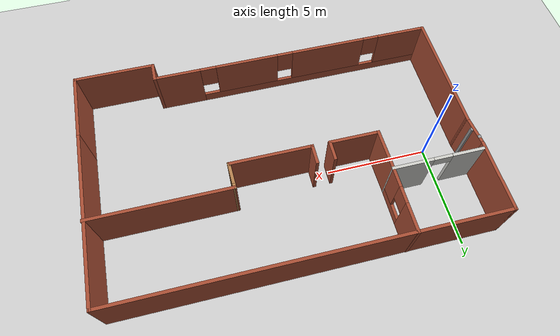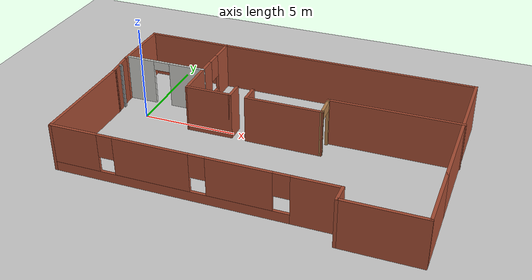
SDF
<sdf version="1.6">
 <world name="default">
  <model name="ground_plane">
   <static>1</static>
   <link name="link">
    <collision name="collision">
     <geometry><plane><normal>0 0 1</normal><size>100 100</size></plane></geometry>
     <surface>
      <contact><collide_bitmask>65535</collide_bitmask></contact>
      <friction><ode><mu>100</mu><mu2>50</mu2></ode></friction>
     </surface>
    </collision>
    <visual name="visual">
     <cast_shadows>0</cast_shadows>
     <geometry><plane><normal>0 0 1</normal><size>100 100</size></plane></geometry>
     <material>
      <script><uri>file://media/materials/scripts/gazebo.material</uri><name>Gazebo/Grey</name></script>
     </material>
    </visual>
   </link>
  </model>
  <light name="sun" type="directional">
   <pose>0 0 10 0 -0 0</pose>
   <diffuse>0.8 0.8 0.8 1</diffuse>
   <specular>0.2 0.2 0.2 1</specular>
   <attenuation>
    <range>1000</range>
    <constant>0.9</constant>
    <linear>0.01</linear>
    <quadratic>0.001</quadratic>
   </attenuation>
   <direction>-0.5 0.1 -0.9</direction>
  </light>
  <gravity>0 0 -9.8</gravity>
  <magnetic_field>6e-06 2.3e-05 -4.2e-05</magnetic_field>
  <atmosphere type="adiabatic"/>
  <physics name="default_physics" default="0" type="ode">
   <max_step_size>0.001</max_step_size>
   <real_time_factor>1</real_time_factor>
   <real_time_update_rate>1000</real_time_update_rate>
  </physics>
  <scene><ambient>0.4 0.4 0.4 1</ambient><background>0.7 0.7 0.7 1</background><shadows>1</shadows></scene>
  <spherical_coordinates>
   <surface_model>EARTH_WGS84</surface_model>
   <latitude_deg>0</latitude_deg>
   <longitude_deg>0</longitude_deg>
   <elevation>0</elevation>
   <heading_deg>0</heading_deg>
  </spherical_coordinates>
  <model name="my_building_editor">
   <pose>7.2814 -1.03194 0 0 -0 0</pose>
   <link name="Wall_10">
    <collision name="Wall_10_Collision">
     <geometry><box><size>3.5 0.15 2.5</size></box></geometry>
     <pose>0 0 1.25 0 -0 0</pose>
    </collision>
    <visual name="Wall_10_Visual">
     <pose>0 0 1.25 0 -0 0</pose>
     <geometry><box><size>3.5 0.15 2.5</size></box></geometry>
     <material>
      <script><uri>file://media/materials/scripts/gazebo.material</uri><name>Gazebo/Bricks</name></script>
      <ambient>1 1 1 1</ambient>
     </material>
     <meta><layer>0</layer></meta>
    </visual>
    <pose>9.0299 -4.05736 0 0 0 -1.5708</pose>
   </link>
   <link name="Wall_11">
    <collision name="Wall_11_Collision">
     <geometry><box><size>4 0.15 2.5</size></box></geometry>
     <pose>0 0 1.25 0 -0 0</pose>
    </collision>
    <visual name="Wall_11_Visual">
     <pose>0 0 1.25 0 -0 0</pose>
     <geometry><box><size>4 0.15 2.5</size></box></geometry>
     <material>
      <script><uri>file://media/materials/scripts/gazebo.material</uri><name>Gazebo/Bricks</name></script>
      <ambient>1 1 1 1</ambient>
     </material>
     <meta><layer>0</layer></meta>
    </visual>
    <pose>7.1049 -5.73236 0 0 -0 3.14159</pose>
   </link>
   <link name="Wall_12">
    <collision name="Wall_12_Collision">
     <geometry><box><size>1 0.15 2.5</size></box></geometry>
     <pose>0 0 1.25 0 -0 0</pose>
    </collision>
    <visual name="Wall_12_Visual">
     <pose>0 0 1.25 0 -0 0</pose>
     <geometry><box><size>1 0.15 2.5</size></box></geometry>
     <material>
      <script><uri>file://media/materials/scripts/gazebo.material</uri><name>Gazebo/Bricks</name></script>
      <ambient>1 1 1 1</ambient>
     </material>
     <meta><layer>0</layer></meta>
    </visual>
    <pose>5.1799 -5.30736 0 0 -0 1.5708</pose>
   </link>
   <link name="Wall_13">
    <pose>-1.8701 -4.88236 0 0 -0 3.14159</pose>
    <visual name="Wall_13_Visual_0">
     <pose>-5.94799 0 1.25 0 -0 0</pose>
     <geometry><box><size>2.35401 0.15 2.5</size></box></geometry>
     <material>
      <script><uri>file://media/materials/scripts/gazebo.material</uri><name>Gazebo/Bricks</name></script>
      <ambient>1 1 1 1</ambient>
     </material>
     <meta><layer>0</layer></meta>
    </visual>
    <collision name="Wall_13_Collision_0">
     <geometry><box><size>2.35401 0.15 2.5</size></box></geometry>
     <pose>-5.94799 0 1.25 0 -0 0</pose>
    </collision>
    <visual name="Wall_13_Visual_1">
     <pose>1.17701 0 0.25 0 -0 0</pose>
     <geometry><box><size>11.896 0.15 0.5</size></box></geometry>
     <material>
      <script><uri>file://media/materials/scripts/gazebo.material</uri><name>Gazebo/Bricks</name></script>
      <ambient>1 1 1 1</ambient>
     </material>
     <meta><layer>0</layer></meta>
    </visual>
    <collision name="Wall_13_Collision_1">
     <geometry><box><size>11.896 0.15 0.5</size></box></geometry>
     <pose>1.17701 0 0.25 0 -0 0</pose>
    </collision>
    <visual name="Wall_13_Visual_2">
     <pose>-2.39099 0 1.5 0 -0 0</pose>
     <geometry><box><size>3.16 0.15 2</size></box></geometry>
     <material>
      <script><uri>file://media/materials/scripts/gazebo.material</uri><name>Gazebo/Bricks</name></script>
      <ambient>1 1 1 1</ambient>
     </material>
     <meta><layer>0</layer></meta>
    </visual>
    <collision name="Wall_13_Collision_2">
     <geometry><box><size>3.16 0.15 2</size></box></geometry>
     <pose>-2.39099 0 1.5 0 -0 0</pose>
    </collision>
    <visual name="Wall_13_Visual_3">
     <pose>1.88902 0 1.5 0 -0 0</pose>
     <geometry><box><size>3.8 0.15 2</size></box></geometry>
     <material>
      <script><uri>file://media/materials/scripts/gazebo.material</uri><name>Gazebo/Bricks</name></script>
      <ambient>1 1 1 1</ambient>
     </material>
     <meta><layer>0</layer></meta>
    </visual>
    <collision name="Wall_13_Collision_3">
     <geometry><box><size>3.8 0.15 2</size></box></geometry>
     <pose>1.88902 0 1.5 0 -0 0</pose>
    </collision>
    <visual name="Wall_13_Visual_4">
     <pose>5.85701 0 1.5 0 -0 0</pose>
     <geometry><box><size>2.53599 0.15 2</size></box></geometry>
     <material>
      <script><uri>file://media/materials/scripts/gazebo.material</uri><name>Gazebo/Bricks</name></script>
      <ambient>1 1 1 1</ambient>
     </material>
     <meta><layer>0</layer></meta>
    </visual>
    <collision name="Wall_13_Collision_4">
     <geometry><box><size>2.53599 0.15 2</size></box></geometry>
     <pose>5.85701 0 1.5 0 -0 0</pose>
    </collision>
    <visual name="Wall_13_Visual_5">
     <pose>-4.37099 0 1.9 0 -0 0</pose>
     <geometry><box><size>0.8 0.15 1.2</size></box></geometry>
     <material>
      <script><uri>file://media/materials/scripts/gazebo.material</uri><name>Gazebo/Bricks</name></script>
      <ambient>1 1 1 1</ambient>
     </material>
     <meta><layer>0</layer></meta>
    </visual>
    <collision name="Wall_13_Collision_5">
     <geometry><box><size>0.8 0.15 1.2</size></box></geometry>
     <pose>-4.37099 0 1.9 0 -0 0</pose>
    </collision>
    <visual name="Wall_13_Visual_6">
     <pose>-0.410985 0 1.9 0 -0 0</pose>
     <geometry><box><size>0.8 0.15 1.2</size></box></geometry>
     <material>
      <script><uri>file://media/materials/scripts/gazebo.material</uri><name>Gazebo/Bricks</name></script>
      <ambient>1 1 1 1</ambient>
     </material>
     <meta><layer>0</layer></meta>
    </visual>
    <collision name="Wall_13_Collision_6">
     <geometry><box><size>0.8 0.15 1.2</size></box></geometry>
     <pose>-0.410985 0 1.9 0 -0 0</pose>
    </collision>
    <visual name="Wall_13_Visual_7">
     <pose>4.18901 0 1.9 0 -0 0</pose>
     <geometry><box><size>0.8 0.15 1.2</size></box></geometry>
     <material>
      <script><uri>file://media/materials/scripts/gazebo.material</uri><name>Gazebo/Bricks</name></script>
      <ambient>1 1 1 1</ambient>
     </material>
     <meta><layer>0</layer></meta>
    </visual>
    <collision name="Wall_13_Collision_7">
     <geometry><box><size>0.8 0.15 1.2</size></box></geometry>
     <pose>4.18901 0 1.9 0 -0 0</pose>
    </collision>
   </link>
   <link name="Wall_14">
    <collision name="Wall_14_Collision">
     <geometry><box><size>6 0.15 2.5</size></box></geometry>
     <pose>0 0 1.25 0 -0 0</pose>
    </collision>
    <visual name="Wall_14_Visual">
     <pose>0 0 1.25 0 -0 0</pose>
     <geometry><box><size>6 0.15 2.5</size></box></geometry>
     <material>
      <script><uri>file://media/materials/scripts/gazebo.material</uri><name>Gazebo/Bricks</name></script>
      <ambient>1 1 1 1</ambient>
     </material>
     <meta><layer>0</layer></meta>
    </visual>
    <pose>-8.9201 -1.95736 0 0 -0 1.5708</pose>
   </link>
   <link name="Wall_16">
    <collision name="Wall_16_Collision">
     <geometry><box><size>0.15 0.15 2.5</size></box></geometry>
     <pose>0 0 1.25 0 -0 0</pose>
    </collision>
    <visual name="Wall_16_Visual">
     <pose>0 0 1.25 0 -0 0</pose>
     <geometry><box><size>0.15 0.15 2.5</size></box></geometry>
     <material>
      <script><uri>file://media/materials/scripts/gazebo.material</uri><name>Gazebo/Grey</name></script>
      <ambient>1 1 1 1</ambient>
     </material>
     <meta><layer>0</layer></meta>
    </visual>
    <pose>-8.88866 1.56764 0 0 -0 0</pose>
   </link>
   <link name="Wall_20">
    <collision name="Wall_20_Collision">
     <geometry><box><size>0.15 0.15 2.5</size></box></geometry>
     <pose>0 0 1.25 0 -0 0</pose>
    </collision>
    <visual name="Wall_20_Visual">
     <pose>0 0 1.25 0 -0 0</pose>
     <geometry><box><size>0.15 0.15 2.5</size></box></geometry>
     <material>
      <script><uri>file://media/materials/scripts/gazebo.material</uri><name>Gazebo/Grey</name></script>
      <ambient>1 1 1 1</ambient>
     </material>
     <meta><layer>0</layer></meta>
    </visual>
    <pose>-9.0501 2.01764 0 0 -0 0</pose>
   </link>
   <link name="Wall_23">
    <collision name="Wall_23_Collision">
     <geometry><box><size>1.55801 0.15 2.5</size></box></geometry>
     <pose>0 0 1.25 0 -0 0</pose>
    </collision>
    <visual name="Wall_23_Visual">
     <pose>0 0 1.25 0 -0 0</pose>
     <geometry><box><size>1.55801 0.15 2.5</size></box></geometry>
     <material>
      <script><uri>file://media/materials/scripts/gazebo.material</uri><name>Gazebo/Bricks</name></script>
      <ambient>1 1 1 1</ambient>
     </material>
     <meta><layer>0</layer></meta>
    </visual>
    <pose>-8.9951 1.66764 0 0 -0 1.67753</pose>
   </link>
   <link name="Wall_25">
    <pose>-4.62234 4.18236 0 0 0 -1.5708</pose>
    <visual name="Wall_25_Visual_0">
     <pose>-0.906208 0 1.25 0 -0 0</pose>
     <geometry><box><size>1.43758 0.15 2.5</size></box></geometry>
     <material>
      <script><uri>file://media/materials/scripts/gazebo.material</uri><name>Gazebo/Bricks</name></script>
      <ambient>1 1 1 1</ambient>
     </material>
     <meta><layer>0</layer></meta>
    </visual>
    <collision name="Wall_25_Collision_0">
     <geometry><box><size>1.43758 0.15 2.5</size></box></geometry>
     <pose>-0.906208 0 1.25 0 -0 0</pose>
    </collision>
    <visual name="Wall_25_Visual_1">
     <pose>0.718792 0 0.25 0 -0 0</pose>
     <geometry><box><size>1.81242 0.15 0.5</size></box></geometry>
     <material>
      <script><uri>file://media/materials/scripts/gazebo.material</uri><name>Gazebo/Bricks</name></script>
      <ambient>1 1 1 1</ambient>
     </material>
     <meta><layer>0</layer></meta>
    </visual>
    <collision name="Wall_25_Collision_1">
     <geometry><box><size>1.81242 0.15 0.5</size></box></geometry>
     <pose>0.718792 0 0.25 0 -0 0</pose>
    </collision>
    <visual name="Wall_25_Visual_2">
     <pose>1.11879 0 1.5 0 -0 0</pose>
     <geometry><box><size>1.01242 0.15 2</size></box></geometry>
     <material>
      <script><uri>file://media/materials/scripts/gazebo.material</uri><name>Gazebo/Bricks</name></script>
      <ambient>1 1 1 1</ambient>
     </material>
     <meta><layer>0</layer></meta>
    </visual>
    <collision name="Wall_25_Collision_2">
     <geometry><box><size>1.01242 0.15 2</size></box></geometry>
     <pose>1.11879 0 1.5 0 -0 0</pose>
    </collision>
    <visual name="Wall_25_Visual_3">
     <pose>0.212584 0 1.9 0 -0 0</pose>
     <geometry><box><size>0.8 0.15 1.2</size></box></geometry>
     <material>
      <script><uri>file://media/materials/scripts/gazebo.material</uri><name>Gazebo/Bricks</name></script>
      <ambient>1 1 1 1</ambient>
     </material>
     <meta><layer>0</layer></meta>
    </visual>
    <collision name="Wall_25_Collision_3">
     <geometry><box><size>0.8 0.15 1.2</size></box></geometry>
     <pose>0.212584 0 1.9 0 -0 0</pose>
    </collision>
   </link>
   <link name="Wall_27">
    <pose>-6.79734 2.63236 0 0 -0 3.14159</pose>
    <visual name="Wall_27_Visual_0">
     <pose>-1.2396 0 1.25 0 -0 0</pose>
     <geometry><box><size>2.0208 0.15 2.5</size></box></geometry>
     <material>
      <script><uri>file://media/materials/scripts/gazebo.material</uri><name>Gazebo/CeilingTiled</name></script>
      <ambient>1 0 0 1</ambient>
     </material>
     <meta><layer>0</layer></meta>
    </visual>
    <collision name="Wall_27_Collision_0">
     <geometry><box><size>2.0208 0.15 2.5</size></box></geometry>
     <pose>-1.2396 0 1.25 0 -0 0</pose>
    </collision>
    <visual name="Wall_27_Visual_1">
     <pose>1.4604 0 1.25 0 -0 0</pose>
     <geometry><box><size>1.5792 0.15 2.5</size></box></geometry>
     <material>
      <script><uri>file://media/materials/scripts/gazebo.material</uri><name>Gazebo/CeilingTiled</name></script>
      <ambient>1 0 0 1</ambient>
     </material>
     <meta><layer>0</layer></meta>
    </visual>
    <collision name="Wall_27_Collision_1">
     <geometry><box><size>1.5792 0.15 2.5</size></box></geometry>
     <pose>1.4604 0 1.25 0 -0 0</pose>
    </collision>
    <visual name="Wall_27_Visual_2">
     <pose>0.220803 0 2.25 0 -0 0</pose>
     <geometry><box><size>0.9 0.15 0.5</size></box></geometry>
     <material>
      <script><uri>file://media/materials/scripts/gazebo.material</uri><name>Gazebo/CeilingTiled</name></script>
      <ambient>1 0 0 1</ambient>
     </material>
     <meta><layer>0</layer></meta>
    </visual>
    <collision name="Wall_27_Collision_2">
     <geometry><box><size>0.9 0.15 0.5</size></box></geometry>
     <pose>0.220803 0 2.25 0 -0 0</pose>
    </collision>
   </link>
   <link name="Wall_30">
    <collision name="Wall_30_Collision">
     <geometry><box><size>2.11039 0.15 2.5</size></box></geometry>
     <pose>0 0 1.25 0 -0 0</pose>
    </collision>
    <visual name="Wall_30_Visual">
     <pose>0 0 1.25 0 -0 0</pose>
     <geometry><box><size>2.11039 0.15 2.5</size></box></geometry>
     <material>
      <script><uri>file://media/materials/scripts/gazebo.material</uri><name>Gazebo/Bricks</name></script>
      <ambient>1 1 1 1</ambient>
     </material>
     <meta><layer>0</layer></meta>
    </visual>
    <pose>-4.60485 1.65232 0 0 0 -1.55295</pose>
   </link>
   <link name="Wall_32">
    <pose>2.49515 1.27732 0 0 -0 1.5997</pose>
    <visual name="Wall_32_Visual_0">
     <pose>-0.587147 0 1.25 0 -0 0</pose>
     <geometry><box><size>0.186291 0.15 2.5</size></box></geometry>
     <material>
      <script><uri>file://media/materials/scripts/gazebo.material</uri><name>Gazebo/Wood</name></script>
      <ambient>1 1 1 1</ambient>
     </material>
     <meta><layer>0</layer></meta>
    </visual>
    <collision name="Wall_32_Collision_0">
     <geometry><box><size>0.186291 0.15 2.5</size></box></geometry>
     <pose>-0.587147 0 1.25 0 -0 0</pose>
    </collision>
    <visual name="Wall_32_Visual_1">
     <pose>0.543145 0 1.25 0 -0 0</pose>
     <geometry><box><size>0.274294 0.15 2.5</size></box></geometry>
     <material>
      <script><uri>file://media/materials/scripts/gazebo.material</uri><name>Gazebo/Wood</name></script>
      <ambient>1 1 1 1</ambient>
     </material>
     <meta><layer>0</layer></meta>
    </visual>
    <collision name="Wall_32_Collision_1">
     <geometry><box><size>0.274294 0.15 2.5</size></box></geometry>
     <pose>0.543145 0 1.25 0 -0 0</pose>
    </collision>
    <visual name="Wall_32_Visual_2">
     <pose>-0.044002 0 2.25 0 -0 0</pose>
     <geometry><box><size>0.9 0.15 0.5</size></box></geometry>
     <material>
      <script><uri>file://media/materials/scripts/gazebo.material</uri><name>Gazebo/Wood</name></script>
      <ambient>1 1 1 1</ambient>
     </material>
     <meta><layer>0</layer></meta>
    </visual>
    <collision name="Wall_32_Collision_2">
     <geometry><box><size>0.9 0.15 0.5</size></box></geometry>
     <pose>-0.044002 0 2.25 0 -0 0</pose>
    </collision>
   </link>
   <link name="Wall_35">
    <collision name="Wall_35_Collision">
     <geometry><box><size>6.75 0.15 2.5</size></box></geometry>
     <pose>0 0 1.25 0 -0 0</pose>
    </collision>
    <visual name="Wall_35_Visual">
     <pose>0 0 1.25 0 -0 0</pose>
     <geometry><box><size>6.75 0.15 2.5</size></box></geometry>
     <material>
      <script><uri>file://media/materials/scripts/gazebo.material</uri><name>Gazebo/Bricks</name></script>
      <ambient>1 1 1 1</ambient>
     </material>
     <meta><layer>0</layer></meta>
    </visual>
    <pose>5.77766 1.88236 0 0 -0 0</pose>
   </link>
   <link name="Wall_4">
    <collision name="Wall_4_Collision">
     <geometry><box><size>3.5 0.15 2.5</size></box></geometry>
     <pose>0 0 1.25 0 -0 0</pose>
    </collision>
    <visual name="Wall_4_Visual">
     <pose>0 0 1.25 0 -0 0</pose>
     <geometry><box><size>3.5 0.15 2.5</size></box></geometry>
     <material>
      <script><uri>file://media/materials/scripts/gazebo.material</uri><name>Gazebo/Bricks</name></script>
      <ambient>1 1 1 1</ambient>
     </material>
     <meta><layer>0</layer></meta>
    </visual>
    <pose>-9.0701 4.04264 0 0 -0 1.5708</pose>
   </link>
   <link name="Wall_41">
    <collision name="Wall_41_Collision">
     <geometry><box><size>2.5 0.15 2.5</size></box></geometry>
     <pose>0 0 1.25 0 -0 0</pose>
    </collision>
    <visual name="Wall_41_Visual">
     <pose>0 0 1.25 0 -0 0</pose>
     <geometry><box><size>2.5 0.15 2.5</size></box></geometry>
     <material>
      <script><uri>file://media/materials/scripts/gazebo.material</uri><name>Gazebo/Bricks</name></script>
      <ambient>1 1 1 1</ambient>
     </material>
     <meta><layer>0</layer></meta>
    </visual>
    <pose>-3.41236 0.672278 0 0 -0 0</pose>
   </link>
   <link name="Wall_42">
    <collision name="Wall_42_Collision">
     <geometry><box><size>1 0.15 2.5</size></box></geometry>
     <pose>0 0 1.25 0 -0 0</pose>
    </collision>
    <visual name="Wall_42_Visual">
     <pose>0 0 1.25 0 -0 0</pose>
     <geometry><box><size>1 0.15 2.5</size></box></geometry>
     <material>
      <script><uri>file://media/materials/scripts/gazebo.material</uri><name>Gazebo/Bricks</name></script>
      <ambient>1 1 1 1</ambient>
     </material>
     <meta><layer>0</layer></meta>
    </visual>
    <pose>-2.23736 1.09728 0 0 -0 1.5708</pose>
   </link>
   <link name="Wall_44">
    <collision name="Wall_44_Collision">
     <geometry><box><size>1 0.15 2.5</size></box></geometry>
     <pose>0 0 1.25 0 -0 0</pose>
    </collision>
    <visual name="Wall_44_Visual">
     <pose>0 0 1.25 0 -0 0</pose>
     <geometry><box><size>1 0.15 2.5</size></box></geometry>
     <material>
      <script><uri>file://media/materials/scripts/gazebo.material</uri><name>Gazebo/Bricks</name></script>
      <ambient>1 1 1 1</ambient>
     </material>
     <meta><layer>0</layer></meta>
    </visual>
    <pose>-1.38736 1.09728 0 0 0 -1.5708</pose>
   </link>
   <link name="Wall_45">
    <collision name="Wall_45_Collision">
     <geometry><box><size>4.05 0.15 2.5</size></box></geometry>
     <pose>0 0 1.25 0 -0 0</pose>
    </collision>
    <visual name="Wall_45_Visual">
     <pose>0 0 1.25 0 -0 0</pose>
     <geometry><box><size>4.05 0.15 2.5</size></box></geometry>
     <material>
      <script><uri>file://media/materials/scripts/gazebo.material</uri><name>Gazebo/Bricks</name></script>
      <ambient>1 1 1 1</ambient>
     </material>
     <meta><layer>0</layer></meta>
    </visual>
    <pose>0.56264 0.672278 0 0 -0 0</pose>
   </link>
   <link name="Wall_5">
    <collision name="Wall_5_Collision">
     <geometry><box><size>18.25 0.15 2.5</size></box></geometry>
     <pose>0 0 1.25 0 -0 0</pose>
    </collision>
    <visual name="Wall_5_Visual">
     <pose>0 0 1.25 0 -0 0</pose>
     <geometry><box><size>18.25 0.15 2.5</size></box></geometry>
     <material>
      <script><uri>file://media/materials/scripts/gazebo.material</uri><name>Gazebo/Bricks</name></script>
      <ambient>1 1 1 1</ambient>
     </material>
     <meta><layer>0</layer></meta>
    </visual>
    <pose>-0.020097 5.71764 0 0 -0 0</pose>
   </link>
   <link name="Wall_8">
    <collision name="Wall_8_Collision">
     <geometry><box><size>8.25 0.15 2.5</size></box></geometry>
     <pose>0 0 1.25 0 -0 0</pose>
    </collision>
    <visual name="Wall_8_Visual">
     <pose>0 0 1.25 0 -0 0</pose>
     <geometry><box><size>8.25 0.15 2.5</size></box></geometry>
     <material>
      <script><uri>file://media/materials/scripts/gazebo.material</uri><name>Gazebo/Bricks</name></script>
      <ambient>1 1 1 1</ambient>
     </material>
     <meta><layer>0</layer></meta>
    </visual>
    <pose>9.0299 1.66764 0 0 0 -1.5708</pose>
   </link>
   <static>1</static>
  </model>
  <model name="my_ball">
   <link name="link_0">
    <pose>-0 -0 -0.000395 0 -0 0</pose>
    <inertial>
     <mass>1</mass>
     <inertia><ixx>0.1</ixx><ixy>0</ixy><ixz>0</ixz><iyy>0.1</iyy><iyz>0</iyz><izz>0.1</izz></inertia>
    </inertial>
    <visual name="visual">
     <geometry><sphere><radius>0.1</radius></sphere></geometry>
     <material>
      <lighting>1</lighting>
      <script><uri>file://media/materials/scripts/gazebo.material</uri><name>Gazebo/Grey</name></script>
      <shader type="pixel"><normal_map>__default__</normal_map></shader>
      <ambient>1 1 1 1</ambient>
      <diffuse>1 1 1 1</diffuse>
      <specular>1 1 1 1</specular>
      <emissive>1 1 1 1</emissive>
     </material>
    </visual>
    <collision name="collision">
     <geometry><sphere><radius>0.1</radius></sphere></geometry>
     <surface>
      <friction>
       <ode><mu>1</mu><mu2>1</mu2><fdir1>0 0 0</fdir1><slip1>0</slip1><slip2>0</slip2></ode>
       <torsional>
        <coefficient>1</coefficient>
        <patch_radius>0</patch_radius>
        <surface_radius>0</surface_radius>
        <use_patch_radius>1</use_patch_radius>
        <ode><slip>0</slip></ode>
       </torsional>
      </friction>
      <bounce><restitution_coefficient>0</restitution_coefficient><threshold>1e+06</threshold></bounce>
      <contact>
       <collide_without_contact>0</collide_without_contact>
       <collide_without_contact_bitmask>1</collide_without_contact_bitmask>
       <collide_bitmask>1</collide_bitmask>
       <ode>
        <soft_cfm>0</soft_cfm>
        <soft_erp>0.2</soft_erp>
        <kp>1e+13</kp>
        <kd>1</kd>
        <max_vel>0.01</max_vel>
        <min_depth>0</min_depth>
       </ode>
       <bullet>
        <split_impulse>1</split_impulse>
        <split_impulse_penetration_threshold>-0.01</split_impulse_penetration_threshold>
        <soft_cfm>0</soft_cfm>
        <soft_erp>0.2</soft_erp>
        <kp>1e+13</kp>
        <kd>1</kd>
       </bullet>
      </contact>
     </surface>
    </collision>
   </link>
   <static>0</static>
   <pose>-2.63077 0.505097 0.100395 0 -0 0</pose>
  </model>
 </world>
</sdf>
